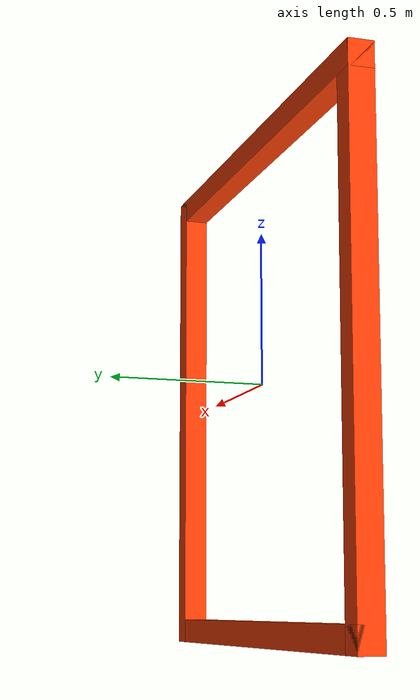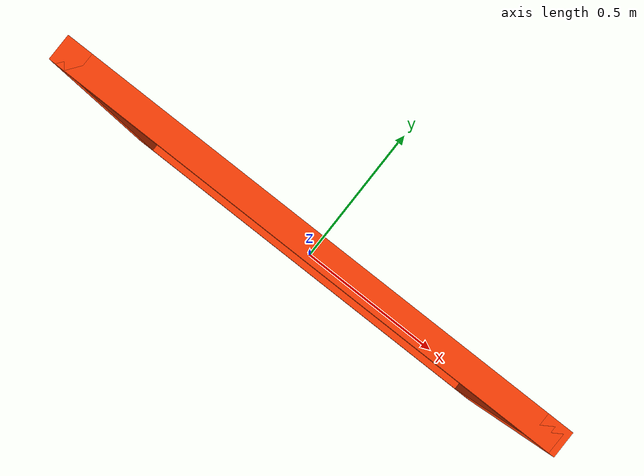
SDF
<?xml version="1.0"?>
<sdf version="1.6">
  <model name="rl_figure8_gate">
    <static>true</static>
    <link name="frame">
      <visual name="left_post">
        <pose>-0.79 0 0 0 0 0</pose>
        <geometry><box><size>0.08 0.08 1.66</size></box></geometry>
        <material>
          <ambient>1.0 0.25 0.02 1</ambient>
          <diffuse>1.0 0.25 0.02 1</diffuse>
          <emissive>0.25 0.04 0.0 1</emissive>
        </material>
      </visual>
      <visual name="right_post">
        <pose>0.79 0 0 0 0 0</pose>
        <geometry><box><size>0.08 0.08 1.66</size></box></geometry>
        <material>
          <ambient>1.0 0.25 0.02 1</ambient>
          <diffuse>1.0 0.25 0.02 1</diffuse>
          <emissive>0.25 0.04 0.0 1</emissive>
        </material>
      </visual>
      <visual name="top_bar">
        <pose>0 0 0.79 0 0 0</pose>
        <geometry><box><size>1.66 0.08 0.08</size></box></geometry>
        <material>
          <ambient>1.0 0.25 0.02 1</ambient>
          <diffuse>1.0 0.25 0.02 1</diffuse>
          <emissive>0.25 0.04 0.0 1</emissive>
        </material>
      </visual>
      <visual name="bottom_bar">
        <pose>0 0 -0.79 0 0 0</pose>
        <geometry><box><size>1.66 0.08 0.08</size></box></geometry>
        <material>
          <ambient>1.0 0.25 0.02 1</ambient>
          <diffuse>1.0 0.25 0.02 1</diffuse>
          <emissive>0.25 0.04 0.0 1</emissive>
        </material>
      </visual>
    </link>
  </model>
</sdf>
